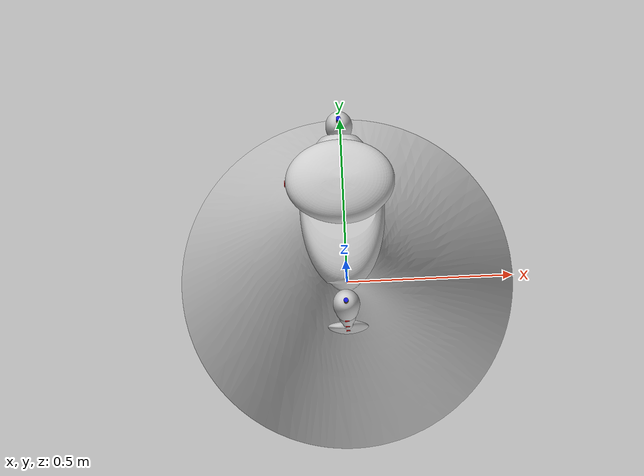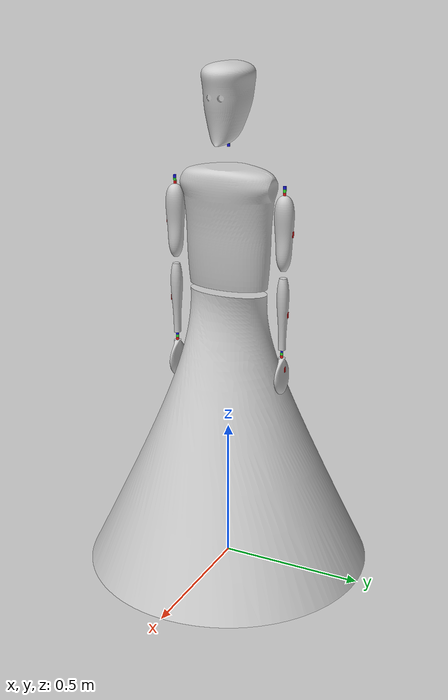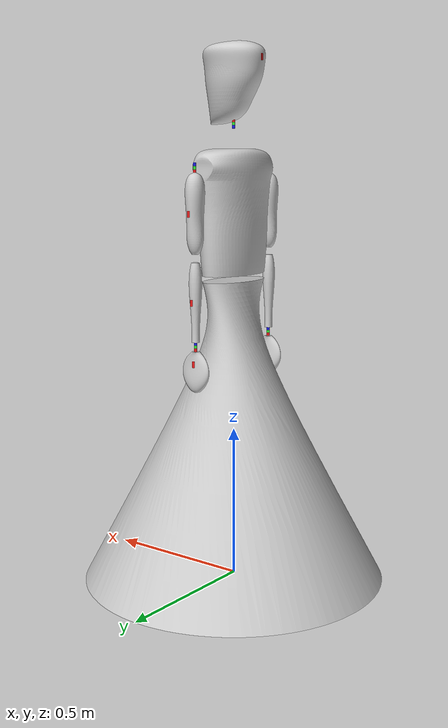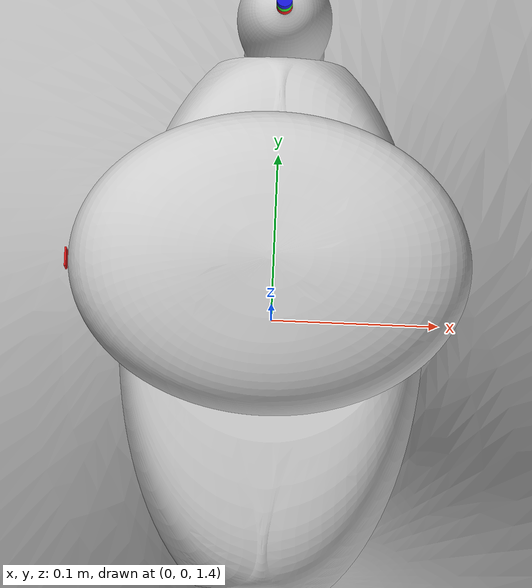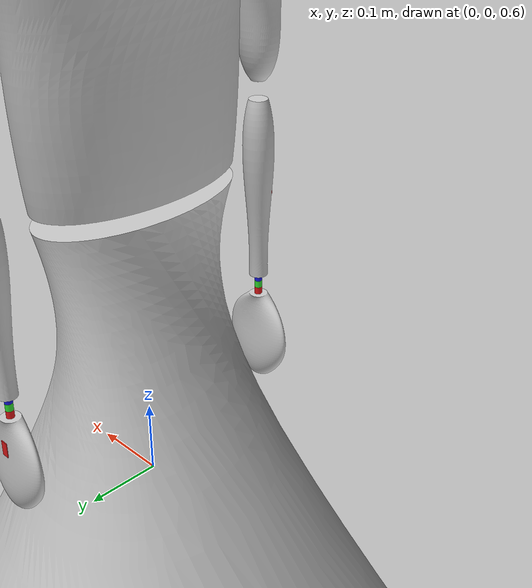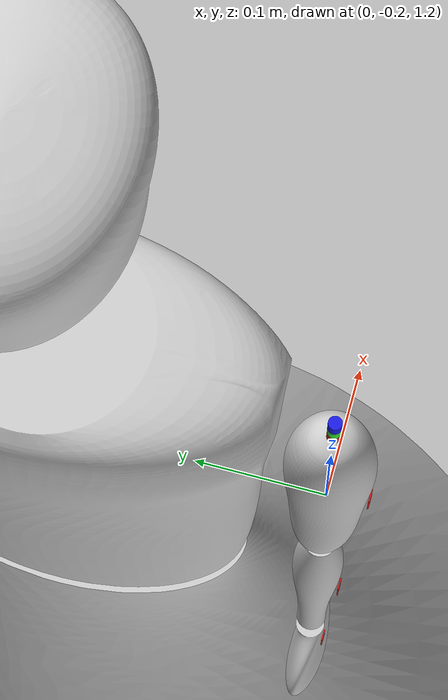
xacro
<?xml version="1.0" ?>

<robot name="human_model" xmlns:xacro="http://www.ros.org/wiki/xacro">

  <link name="world"/>

  <!-- box to world -->
  <joint name="world_joint" type="fixed">
    <origin xyz="0 0 0" rpy="0 0 0"/>
    <parent link="world"/>
    <child link="leg_ws"/>
  </joint>

  <!-- box link -->
  <link name="leg_ws">
    <collision>
      <origin xyz="0 0 0" rpy="0 0 0"/>
      <geometry>
        <mesh filename="package://human_model/meshes/leg_ws.STL" scale="0.001 0.001 0.001"/>
      </geometry>
    </collision>

    <visual>
      <origin xyz="0 0 0" rpy="0 0 0"/>
      <geometry>
        <mesh filename="package://human_model/meshes/leg_ws.STL" scale="0.001 0.001 0.001"/>
      </geometry>
      <material name="grey"/>
    </visual>

    <inertial>
      <mass value="268.51"/>
      <origin xyz="0 0 0.27" rpy="0 0 0"/>
      <inertia
      ixx="41.15"   ixy="-0.35"   ixz="0"
      iyx="-0.35"   iyy="41.08"   iyz="0"
      izx="0"   izy="0"   izz="19.68" />
    </inertial>
  </link>

  <!-- model to box -->
  <joint name="leg_joint" type="fixed">
    <origin xyz="0 0 1.02" rpy="0 0 0"/>
    <parent link="leg_ws"/>
    <child link="body"/>
  </joint>

  <!-- model link -->
  <link name="body">
    <collision>
      <origin xyz="0 0 0" rpy="0 0 0"/>
      <geometry>
        <mesh filename="package://human_model/meshes/Body.STL" scale="0.001 0.001 0.001"/>
      </geometry>
    </collision>

    <visual>
      <origin xyz="0 0 0" rpy="0 0 0"/>
      <geometry>
        <mesh filename="package://human_model/meshes/Body.STL" scale="0.001 0.001 0.001"/>
      </geometry>
      <material name="grey"/>
    </visual>

    <inertial>
      <mass value="15.83"/>
      <origin xyz="0 0 0.21" rpy="0 0 0"/>
      <inertia
      ixx="1.01"   ixy="0"   ixz="0"
      iyx="0"   iyy="0.94"   iyz="0"
      izx="0"   izy="0"   izz="0.12" />
    </inertial>
  </link>

  <!-- =============================   HEAD   ========================================== -->
  <!-- head_z to body -->
  <joint name="neck_z" type="revolute">
    <origin xyz="0 0 0.47" rpy="0 0 0"/>
    <parent link="body"/>
    <child link="head_z"/>

    <axis xyz="0 0 1"/>
    <limit effort="30" velocity="1.0" lower="-1.57" upper="1.57" />
  </joint>

  <!-- head_z link -->
  <link name="head_z">
    <collision>
      <origin xyz="0 0 0" rpy="0 0 0"/>
      <geometry>
        <cylinder radius="0.005" length="0.01"/>
      </geometry>
    </collision>

    <visual>
      <origin xyz="0 0 0" rpy="0 0 0"/>
      <geometry>
        <cylinder radius="0.005" length="0.01"/>
      </geometry>
      <material name="blue"/>
    </visual>

    <inertial>
      <mass value="2" />
      <origin xyz="0 0 0" rpy="0 0 0"/>
      <inertia ixx="1e-6" ixy="0" ixz="0" iyy="1e-6" iyz="0" izz="1e-6" />
    </inertial>
  </link>

  <!-- head_y to head_z -->
  <joint name="neck_y" type="revolute">
    <origin xyz="0 0 0.01" rpy="0 0 0"/>
    <parent link="head_z"/>
    <child link="head_y"/>

    <axis xyz="0 1 0"/>
    <limit effort="30" velocity="1.0" lower="-1.2" upper="1.0" />
  </joint>

  <!-- head_y link -->
  <link name="head_y">
    <collision>
      <origin xyz="0 0 0" rpy="0 0 0"/>
      <geometry>
        <cylinder radius="0.005" length="0.01"/>
      </geometry>
    </collision>

    <visual>
      <origin xyz="0 0 0" rpy="0 0 0"/>
      <geometry>
        <cylinder radius="0.005" length="0.01"/>
      </geometry>
      <material name="green"/>
    </visual>

    <inertial>
      <mass value="2" />
      <origin xyz="0 0 0" rpy="0 0 0"/>
      <inertia ixx="1e-6" ixy="0" ixz="0" iyy="1e-6" iyz="0" izz="1e-6" />
    </inertial>
  </link>

  <!-- head_x to head_y -->
  <joint name="neck_x" type="revolute">
    <origin xyz="0 0 0.01" rpy="0 0 0"/>
    <parent link="head_y"/>
    <child link="head_x"/>

    <axis xyz="1 0 0"/>
    <limit effort="30" velocity="1.0" lower="-0.79" upper="0.79" />
  </joint>

  <!-- head_x link -->
  <link name="head_x">
    <collision>
      <origin xyz="0 0 0" rpy="0 0 0"/>
      <geometry>
        <cylinder radius="0.005" length="0.01"/>
      </geometry>
    </collision>

    <visual>
      <origin xyz="0 0 0" rpy="0 0 0"/>
      <geometry>
        <cylinder radius="0.005" length="0.01"/>
      </geometry>
      <material name="red"/>
    </visual>

    <inertial>
      <mass value="2" />
      <origin xyz="0 0 0" rpy="0 0 0"/>
      <inertia ixx="1e-6" ixy="0" ixz="0" iyy="1e-6" iyz="0" izz="1e-6" />
    </inertial>
  </link>

  <!-- head to head_x -->
  <joint name="neck" type="fixed">
    <origin xyz="0 0 0.01" rpy="0 0 0"/>
    <parent link="head_x"/>
    <child link="head"/>
  </joint>

  <!-- head link -->
  <link name="head">
    <collision>
      <origin xyz="0 0 0" rpy="0 0 0"/>
      <geometry>
        <mesh filename="package://human_model/meshes/Head.STL" scale="0.001 0.001 0.001"/>
      </geometry>
    </collision>

    <visual>
      <origin xyz="0 0 0" rpy="0 0 0"/>
      <geometry>
        <mesh filename="package://human_model/meshes/Head.STL" scale="0.001 0.001 0.001"/>
      </geometry>
      <material name="grey"/>
    </visual>

    <inertial>
      <mass value="4.62"/>
      <origin xyz="0 0 0.13" rpy="0 0 0"/>
      <inertia
      ixx="0.1"   ixy="0"   ixz="0"
      iyx="0"   iyy="0.11"   iyz="0"
      izx="0"   izy="0"   izz="0.02" />
    </inertial>
  </link>

  <!-- Head IMU -->
  <joint name="imu_head" type="fixed">
    <origin xyz="-0.11 0 0.18" rpy="0 0 0"/>
    <parent link="head"/>
    <child link="head_imu"/>
  </joint>

  <!-- Head IMU -->
  <link name="head_imu">
    <collision>
      <origin xyz="0 0 0" rpy="0 0 0"/>
      <geometry>
          <box size="0.001 0.01 0.02"/>
      </geometry>
    </collision>

    <visual>
      <origin xyz="0 0 0" rpy="0 0 0"/>
      <geometry>
        <box size="0.001 0.01 0.02"/>
      </geometry>
      <material name="red"/>
    </visual>

    <inertial>
      <mass value="0.01"/>
      <origin xyz="0 0 0" rpy="0 0 0"/>
      <inertia
      ixx="0"   ixy="0"   ixz="0"
      iyx="0"   iyy="0"   iyz="0"
      izx="0"   izy="0"   izz="0" />
    </inertial>
  </link>

  <!-- =============================LEFT ARM========================================== -->
  <!-- ============================= UPPER ========================================== -->
  <!-- left_upper_z to body -->
  <joint name="left_shoulder_z" type="revolute">
    <origin xyz="0 0.2 0.35" rpy="0 0 0"/>
    <parent link="body"/>
    <child link="left_upper_z"/>

    <axis xyz="0 0 1"/>
    <limit effort="30" velocity="1.0" lower="-1.57" upper="1.57" />
  </joint>

  <!-- left_upper_z link -->
  <link name="left_upper_z">
    <collision>
      <origin xyz="0 0 0" rpy="0 0 0"/>
      <geometry>
        <cylinder radius="0.005" length="0.01"/>
      </geometry>
    </collision>

    <visual>
      <origin xyz="0 0 0" rpy="0 0 0"/>
      <geometry>
        <cylinder radius="0.005" length="0.01"/>
      </geometry>
      <material name="blue"/>
    </visual>

    <inertial>
      <mass value="0.5" />
      <origin xyz="0 0 0" rpy="0 0 0"/>
      <inertia ixx="1e-6" ixy="0" ixz="0" iyy="1e-6" iyz="0" izz="1e-6" />
    </inertial>
  </link>

  <!-- left_upper_y to left_upper_z -->
  <joint name="left_shoulder_y" type="revolute">
    <origin xyz="0 0 -0.01" rpy="0 0 0"/>
    <parent link="left_upper_z"/>
    <child link="left_upper_y"/>

    <axis xyz="0 1 0"/>
    <limit effort="30" velocity="1.0" lower="-3.14" upper="1.0" />
  </joint>

  <!-- left_upper_y link -->
  <link name="left_upper_y">
    <collision>
      <origin xyz="0 0 0" rpy="0 0 0"/>
      <geometry>
        <cylinder radius="0.005" length="0.01"/>
      </geometry>
    </collision>

    <visual>
      <origin xyz="0 0 0" rpy="0 0 0"/>
      <geometry>
        <cylinder radius="0.005" length="0.01"/>
      </geometry>
      <material name="green"/>
    </visual>

    <inertial>
      <mass value="0.5" />
      <origin xyz="0 0 0" rpy="0 0 0"/>
      <inertia ixx="1e-6" ixy="0" ixz="0" iyy="1e-6" iyz="0" izz="1e-6" />
    </inertial>
  </link>

  <!-- left_upper_x to left_upper_y -->
  <joint name="left_shoulder_x" type="revolute">
    <origin xyz="0 0 -0.01" rpy="0 0 0"/>
    <parent link="left_upper_y"/>
    <child link="left_upper_x"/>

    <axis xyz="1 0 0"/>
    <limit effort="30" velocity="1.0" lower="-0.9" upper="2.7" />
  </joint>

  <!-- left_upper_x link -->
  <link name="left_upper_x">
    <collision>
      <origin xyz="0 0 0" rpy="0 0 0"/>
      <geometry>
        <cylinder radius="0.005" length="0.01"/>
      </geometry>
    </collision>

    <visual>
      <origin xyz="0 0 0" rpy="0 0 0"/>
      <geometry>
        <cylinder radius="0.005" length="0.01"/>
      </geometry>
      <material name="red"/>
    </visual>

    <inertial>
      <mass value="0.5" />
      <origin xyz="0 0 0" rpy="0 0 0"/>
      <inertia ixx="1e-6" ixy="0" ixz="0" iyy="1e-6" iyz="0" izz="1e-6" />
    </inertial>
  </link>

  <!-- upper to left_upper_x -->
  <joint name="left_shoulder" type="fixed">
    <origin xyz="0 0 -0.005" rpy="0 0 0"/>
    <parent link="left_upper_x"/>
    <child link="left_upper"/>
  </joint>

  <!-- upper link -->
  <link name="left_upper">
    <collision>
      <origin xyz="0 0 0" rpy="0 0 0"/>
      <geometry>
        <mesh filename="package://human_model/meshes/Upper.STL" scale="0.001 0.001 0.001"/>
      </geometry>
    </collision>

    <visual>
      <origin xyz="0 0 0" rpy="0 0 0"/>
      <geometry>
        <mesh filename="package://human_model/meshes/Upper.STL" scale="0.001 0.001 0.001"/>
      </geometry>
      <material name="grey"/>
    </visual>

    <inertial>
      <mass value="0.55"/>
      <origin xyz="0 0 -0.12" rpy="0 0 0"/>
      <inertia
      ixx="0.01"   ixy="0"   ixz="0"
      iyx="0"   iyy="0.01"   iyz="0"
      izx="0"   izy="0"   izz="0" />
    </inertial>
  </link>

  <!-- left_upper IMU -->
  <joint name="imu_left_upper" type="fixed">
    <origin xyz="0 0.032 -0.125" rpy="0 0 0"/>
    <parent link="left_upper"/>
    <child link="left_upper_imu"/>
  </joint>

  <!-- left_upper IMU -->
  <link name="left_upper_imu">
    <collision>
      <origin xyz="0 0 0" rpy="0 0 0"/>
      <geometry>
          <box size="0.01 0.001 0.02"/>
      </geometry>
    </collision>

    <visual>
      <origin xyz="0 0 0" rpy="0 0 0"/>
      <geometry>
        <box size="0.01 0.001 0.02"/>
      </geometry>
      <material name="red"/>
    </visual>

    <inertial>
      <mass value="0.01"/>
      <origin xyz="0 0 0" rpy="0 0 0"/>
      <inertia
      ixx="0"   ixy="0"   ixz="0"
      iyx="0"   iyy="0"   iyz="0"
      izx="0"   izy="0"   izz="0" />
    </inertial>
  </link>

  <!-- ============================= LOWER ========================================== -->
  <!-- lower to upper -->
  <joint name="left_elbow" type="revolute">
    <origin xyz="0 0 -0.275" rpy="0 0 0"/>
    <parent link="left_upper"/>
    <child link="left_lower"/>

    <axis xyz="0 1 0"/>
    <limit effort="30" velocity="1.0" lower="-2.35619" upper="0.0" />
  </joint>

  <!-- lower link -->
  <link name="left_lower">
    <collision>
      <origin xyz="0 0 0" rpy="0 0 0"/>
      <geometry>
        <mesh filename="package://human_model/meshes/Lower.STL" scale="0.001 0.001 0.001"/>
      </geometry>
    </collision>

    <visual>
      <origin xyz="0 0 0" rpy="0 0 0"/>
      <geometry>
        <mesh filename="package://human_model/meshes/Lower.STL" scale="0.001 0.001 0.001"/>
      </geometry>
      <material name="grey"/>
    </visual>

    <inertial>
      <mass value="0.22"/>
      <origin xyz="0 0 -0.11" rpy="0 0 0"/>
      <inertia
      ixx="0"   ixy="0"   ixz="0"
      iyx="0"   iyy="0"   iyz="0"
      izx="0"   izy="0"   izz="0" />
    </inertial>
  </link>

  <!-- left_lower IMU -->
  <joint name="imu_left_lower" type="fixed">
    <origin xyz="0 0.02 -0.125" rpy="0 0 0"/>
    <parent link="left_lower"/>
    <child link="left_lower_imu"/>
  </joint>

  <!-- left_lower IMU -->
  <link name="left_lower_imu">
    <collision>
      <origin xyz="0 0 0" rpy="0 0 0"/>
      <geometry>
          <box size="0.01 0.001 0.02"/>
      </geometry>
    </collision>

    <visual>
      <origin xyz="0 0 0" rpy="0 0 0"/>
      <geometry>
        <box size="0.01 0.001 0.02"/>
      </geometry>
      <material name="red"/>
    </visual>

    <inertial>
      <mass value="0.01"/>
      <origin xyz="0 0 0" rpy="0 0 0"/>
      <inertia
      ixx="0"   ixy="0"   ixz="0"
      iyx="0"   iyy="0"   iyz="0"
      izx="0"   izy="0"   izz="0" />
    </inertial>
  </link>

  <!-- =============================  HAND  ========================================== -->
  <!-- left_hand_z to left_lower -->
  <joint name="left_wrist_z" type="revolute">
    <origin xyz="0 0 -0.255" rpy="0 0 0"/>
    <parent link="left_lower"/>
    <child link="left_hand_z"/>

    <axis xyz="0 0 1"/>
    <limit effort="30" velocity="1.0" lower="-1.0" upper="2.5" />
  </joint>

  <!-- left_hand_z link -->
  <link name="left_hand_z">
    <collision>
      <origin xyz="0 0 0" rpy="0 0 0"/>
      <geometry>
        <cylinder radius="0.005" length="0.01"/>
      </geometry>
    </collision>

    <visual>
      <origin xyz="0 0 0" rpy="0 0 0"/>
      <geometry>
        <cylinder radius="0.005" length="0.01"/>
      </geometry>
      <material name="blue"/>
    </visual>

    <inertial>
      <mass value="0.5" />
      <origin xyz="0 0 0" rpy="0 0 0"/>
      <inertia ixx="1e-6" ixy="0" ixz="0" iyy="1e-6" iyz="0" izz="1e-6" />
    </inertial>
  </link>

  <!-- left_hand_y to left_hand_z -->
  <joint name="left_wrist_y" type="revolute">
    <origin xyz="0 0 -0.01" rpy="0 0 0"/>
    <parent link="left_hand_z"/>
    <child link="left_hand_y"/>

    <axis xyz="0 1 0"/>
    <limit effort="30" velocity="1.0" lower="-0.3" upper="0.6" />
  </joint>

  <!-- left_hand_y link -->
  <link name="left_hand_y">
    <collision>
      <origin xyz="0 0 0" rpy="0 0 0"/>
      <geometry>
        <cylinder radius="0.005" length="0.01"/>
      </geometry>
    </collision>

    <visual>
      <origin xyz="0 0 0" rpy="0 0 0"/>
      <geometry>
        <cylinder radius="0.005" length="0.01"/>
      </geometry>
      <material name="green"/>
    </visual>

    <inertial>
      <mass value="0.5" />
      <origin xyz="0 0 0" rpy="0 0 0"/>
      <inertia ixx="1e-6" ixy="0" ixz="0" iyy="1e-6" iyz="0" izz="1e-6" />
    </inertial>
  </link>

  <!-- left_hand_x to left_hand_y -->
  <joint name="left_wrist_x" type="revolute">
    <origin xyz="0 0 -0.01" rpy="0 0 0"/>
    <parent link="left_hand_y"/>
    <child link="left_hand_x"/>

    <axis xyz="1 0 0"/>
    <limit effort="30" velocity="1.0" lower="-1.3" upper="1.2" />
  </joint>

  <!-- left_hand_x link -->
  <link name="left_hand_x">
    <collision>
      <origin xyz="0 0 0" rpy="0 0 0"/>
      <geometry>
        <cylinder radius="0.005" length="0.01"/>
      </geometry>
    </collision>

    <visual>
      <origin xyz="0 0 0" rpy="0 0 0"/>
      <geometry>
        <cylinder radius="0.005" length="0.01"/>
      </geometry>
      <material name="red"/>
    </visual>

    <inertial>
      <mass value="0.5" />
      <origin xyz="0 0 0" rpy="0 0 0"/>
      <inertia ixx="1e-6" ixy="0" ixz="0" iyy="1e-6" iyz="0" izz="1e-6" />
    </inertial>
  </link>

  <!-- hand to left_hand_x -->
  <joint name="left_wrist" type="fixed">
    <origin xyz="0 0 -0.005" rpy="0 0 0"/>
    <parent link="left_hand_x"/>
    <child link="left_hand"/>
  </joint>

  <!-- hand link -->
  <link name="left_hand">
    <collision>
      <origin xyz="0 0 0" rpy="0 0 0"/>
      <geometry>
        <mesh filename="package://human_model/meshes/Hand.STL" scale="0.001 0.001 0.001"/>
      </geometry>
    </collision>

    <visual>
      <origin xyz="0 0 0" rpy="0 0 0"/>
      <geometry>
        <mesh filename="package://human_model/meshes/Hand.STL" scale="0.001 0.001 0.001"/>
      </geometry>
      <material name="grey"/>
    </visual>

    <inertial>
      <mass value="0.21"/>
      <origin xyz="0 0 -0.07" rpy="0 0 0"/>
      <inertia
      ixx="0"   ixy="0"   ixz="0"
      iyx="0"   iyy="0"   iyz="0"
      izx="0"   izy="0"   izz="0" />
    </inertial>
  </link>

  <!-- left_hand IMU -->
  <joint name="imu_left_hand" type="fixed">
    <origin xyz="0 0.013 -0.04" rpy="0 0 0"/>
    <parent link="left_hand"/>
    <child link="left_hand_imu"/>
  </joint>

  <!-- left_hand IMU -->
  <link name="left_hand_imu">
    <collision>
      <origin xyz="0 0 0" rpy="0 0 0"/>
      <geometry>
          <box size="0.01 0.001 0.02"/>
      </geometry>
    </collision>

    <visual>
      <origin xyz="0 0 0" rpy="0 0 0"/>
      <geometry>
        <box size="0.01 0.001 0.02"/>
      </geometry>
      <material name="red"/>
    </visual>

    <inertial>
      <mass value="0.01"/>
      <origin xyz="0 0 0" rpy="0 0 0"/>
      <inertia
      ixx="0"   ixy="0"   ixz="0"
      iyx="0"   iyy="0"   iyz="0"
      izx="0"   izy="0"   izz="0" />
    </inertial>
  </link>

  <!-- =============================RIGHT ARM========================================== -->
  <!-- ============================= UPPER ========================================== -->
  <!-- right_upper_z to body -->
  <joint name="right_shoulder_z" type="revolute">
    <origin xyz="0 -0.2 0.35" rpy="0 0 0"/>
    <parent link="body"/>
    <child link="right_upper_z"/>

    <axis xyz="0 0 1"/>
    <limit effort="30" velocity="1.0" lower="-1.57" upper="1.57" />
  </joint>

  <!-- right_upper_z link -->
  <link name="right_upper_z">
    <collision>
      <origin xyz="0 0 0" rpy="0 0 0"/>
      <geometry>
        <cylinder radius="0.005" length="0.01"/>
      </geometry>
    </collision>

    <visual>
      <origin xyz="0 0 0" rpy="0 0 0"/>
      <geometry>
        <cylinder radius="0.005" length="0.01"/>
      </geometry>
      <material name="blue"/>
    </visual>

    <inertial>
      <mass value="0.5" />
      <origin xyz="0 0 0" rpy="0 0 0"/>
      <inertia ixx="1e-6" ixy="0" ixz="0" iyy="1e-6" iyz="0" izz="1e-6" />
    </inertial>
  </link>

  <!-- right_upper_y to right_upper_z -->
  <joint name="right_shoulder_y" type="revolute">
    <origin xyz="0 0 -0.01" rpy="0 0 0"/>
    <parent link="right_upper_z"/>
    <child link="right_upper_y"/>

    <axis xyz="0 1 0"/>
    <limit effort="30" velocity="1.0" lower="-3.14" upper="1.0" />
  </joint>

  <!-- right_upper_y link -->
  <link name="right_upper_y">
    <collision>
      <origin xyz="0 0 0" rpy="0 0 0"/>
      <geometry>
        <cylinder radius="0.005" length="0.01"/>
      </geometry>
    </collision>

    <visual>
      <origin xyz="0 0 0" rpy="0 0 0"/>
      <geometry>
        <cylinder radius="0.005" length="0.01"/>
      </geometry>
      <material name="green"/>
    </visual>

    <inertial>
      <mass value="0.5" />
      <origin xyz="0 0 0" rpy="0 0 0"/>
      <inertia ixx="1e-6" ixy="0" ixz="0" iyy="1e-6" iyz="0" izz="1e-6" />
    </inertial>
  </link>

  <!-- right_upper_x to right_upper_y -->
  <joint name="right_shoulder_x" type="revolute">
    <origin xyz="0 0 -0.01" rpy="0 0 0"/>
    <parent link="right_upper_y"/>
    <child link="right_upper_x"/>

    <axis xyz="1 0 0"/>
    <limit effort="30" velocity="1.0" lower="-2.7" upper="0.9" />
  </joint>

  <!-- right_upper_x link -->
  <link name="right_upper_x">
    <collision>
      <origin xyz="0 0 0" rpy="0 0 0"/>
      <geometry>
        <cylinder radius="0.005" length="0.01"/>
      </geometry>
    </collision>

    <visual>
      <origin xyz="0 0 0" rpy="0 0 0"/>
      <geometry>
        <cylinder radius="0.005" length="0.01"/>
      </geometry>
      <material name="red"/>
    </visual>

    <inertial>
      <mass value="0.5" />
      <origin xyz="0 0 0" rpy="0 0 0"/>
      <inertia ixx="1e-6" ixy="0" ixz="0" iyy="1e-6" iyz="0" izz="1e-6" />
    </inertial>
  </link>

  <!-- upper to right_upper_x -->
  <joint name="right_shoulder" type="fixed">
    <origin xyz="0 0 -0.005" rpy="0 0 0"/>
    <parent link="right_upper_x"/>
    <child link="right_upper"/>
  </joint>

  <!-- upper link -->
  <link name="right_upper">
    <collision>
      <origin xyz="0 0 0" rpy="0 0 0"/>
      <geometry>
        <mesh filename="package://human_model/meshes/Upper.STL" scale="0.001 0.001 0.001"/>
      </geometry>
    </collision>

    <visual>
      <origin xyz="0 0 0" rpy="0 0 0"/>
      <geometry>
        <mesh filename="package://human_model/meshes/Upper.STL" scale="0.001 0.001 0.001"/>
      </geometry>
      <material name="grey"/>
    </visual>

    <inertial>
      <mass value="0.55"/>
      <origin xyz="0 0 -0.12" rpy="0 0 0"/>
      <inertia
      ixx="0.01"   ixy="0"   ixz="0"
      iyx="0"   iyy="0.01"   iyz="0"
      izx="0"   izy="0"   izz="0" />
    </inertial>
  </link>

  <!-- right_upper IMU -->
  <joint name="imu_right_upper" type="fixed">
    <origin xyz="0 -0.032 -0.125" rpy="0 0 0"/>
    <parent link="right_upper"/>
    <child link="right_upper_imu"/>
  </joint>

  <!-- right_upper IMU -->
  <link name="right_upper_imu">
    <collision>
      <origin xyz="0 0 0" rpy="0 0 0"/>
      <geometry>
          <box size="0.01 0.001 0.02"/>
      </geometry>
    </collision>

    <visual>
      <origin xyz="0 0 0" rpy="0 0 0"/>
      <geometry>
        <box size="0.01 0.001 0.02"/>
      </geometry>
      <material name="red"/>
    </visual>

    <inertial>
      <mass value="0.01"/>
      <origin xyz="0 0 0" rpy="0 0 0"/>
      <inertia
      ixx="0"   ixy="0"   ixz="0"
      iyx="0"   iyy="0"   iyz="0"
      izx="0"   izy="0"   izz="0" />
    </inertial>
  </link>

  <!-- ============================= LOWER ========================================== -->
  <!-- lower to upper -->
  <joint name="right_elbow" type="revolute">
    <origin xyz="0 0 -0.275" rpy="0 0 0"/>
    <parent link="right_upper"/>
    <child link="right_lower"/>

    <axis xyz="0 1 0"/>
    <limit effort="30" velocity="1.0" lower="-1" upper="1" />
  </joint>

  <!-- lower link -->
  <link name="right_lower">
    <collision>
      <origin xyz="0 0 0" rpy="0 0 0"/>
      <geometry>
        <mesh filename="package://human_model/meshes/Lower.STL" scale="0.001 0.001 0.001"/>
      </geometry>
    </collision>

    <visual>
      <origin xyz="0 0 0" rpy="0 0 0"/>
      <geometry>
        <mesh filename="package://human_model/meshes/Lower.STL" scale="0.001 0.001 0.001"/>
      </geometry>
      <material name="grey"/>
    </visual>

    <inertial>
      <mass value="0.22"/>
      <origin xyz="0 0 -0.11" rpy="0 0 0"/>
      <inertia
      ixx="0"   ixy="0"   ixz="0"
      iyx="0"   iyy="0"   iyz="0"
      izx="0"   izy="0"   izz="0" />
    </inertial>
  </link>

  <!-- right_lower IMU -->
  <joint name="imu_right_lower" type="fixed">
    <origin xyz="0 -0.02 -0.125" rpy="0 0 0"/>
    <parent link="right_lower"/>
    <child link="right_lower_imu"/>
  </joint>

  <!-- right_lower IMU -->
  <link name="right_lower_imu">
    <collision>
      <origin xyz="0 0 0" rpy="0 0 0"/>
      <geometry>
          <box size="0.01 0.001 0.02"/>
      </geometry>
    </collision>

    <visual>
      <origin xyz="0 0 0" rpy="0 0 0"/>
      <geometry>
        <box size="0.01 0.001 0.02"/>
      </geometry>
      <material name="red"/>
    </visual>

    <inertial>
      <mass value="0.01"/>
      <origin xyz="0 0 0" rpy="0 0 0"/>
      <inertia
      ixx="0"   ixy="0"   ixz="0"
      iyx="0"   iyy="0"   iyz="0"
      izx="0"   izy="0"   izz="0" />
    </inertial>
  </link>

  <!-- =============================  HAND  ========================================== -->
  <!-- right_hand_z to right_lower -->
  <joint name="right_wrist_z" type="revolute">
    <origin xyz="0 0 -0.255" rpy="0 0 0"/>
    <parent link="right_lower"/>
    <child link="right_hand_z"/>

    <axis xyz="0 0 1"/>
    <limit effort="30" velocity="1.0" lower="-1.0" upper="2.5" />
  </joint>

  <!-- right_hand_z link -->
  <link name="right_hand_z">
    <collision>
      <origin xyz="0 0 0" rpy="0 0 0"/>
      <geometry>
        <cylinder radius="0.005" length="0.01"/>
      </geometry>
    </collision>

    <visual>
      <origin xyz="0 0 0" rpy="0 0 0"/>
      <geometry>
        <cylinder radius="0.005" length="0.01"/>
      </geometry>
      <material name="blue"/>
    </visual>

    <inertial>
      <mass value="0.5" />
      <origin xyz="0 0 0" rpy="0 0 0"/>
      <inertia ixx="1e-6" ixy="0" ixz="0" iyy="1e-6" iyz="0" izz="1e-6" />
    </inertial>
  </link>

  <!-- right_hand_y to right_hand_z -->
  <joint name="right_wrist_y" type="revolute">
    <origin xyz="0 0 -0.01" rpy="0 0 0"/>
    <parent link="right_hand_z"/>
    <child link="right_hand_y"/>

    <axis xyz="0 1 0"/>
    <limit effort="30" velocity="1.0" lower="-0.3" upper="0.6" />
  </joint>

  <!-- right_hand_y link -->
  <link name="right_hand_y">
    <collision>
      <origin xyz="0 0 0" rpy="0 0 0"/>
      <geometry>
        <cylinder radius="0.005" length="0.01"/>
      </geometry>
    </collision>

    <visual>
      <origin xyz="0 0 0" rpy="0 0 0"/>
      <geometry>
        <cylinder radius="0.005" length="0.01"/>
      </geometry>
      <material name="green"/>
    </visual>

    <inertial>
      <mass value="0.5" />
      <origin xyz="0 0 0" rpy="0 0 0"/>
      <inertia ixx="1e-6" ixy="0" ixz="0" iyy="1e-6" iyz="0" izz="1e-6" />
    </inertial>
  </link>

  <!-- right_hand_x to right_hand_y -->
  <joint name="right_wrist_x" type="revolute">
    <origin xyz="0 0 -0.01" rpy="0 0 0"/>
    <parent link="right_hand_y"/>
    <child link="right_hand_x"/>

    <axis xyz="1 0 0"/>
    <limit effort="30" velocity="1.0" lower="-1.3" upper="1.2" />
  </joint>

  <!-- right_hand_x link -->
  <link name="right_hand_x">
    <collision>
      <origin xyz="0 0 0" rpy="0 0 0"/>
      <geometry>
        <cylinder radius="0.005" length="0.01"/>
      </geometry>
    </collision>

    <visual>
      <origin xyz="0 0 0" rpy="0 0 0"/>
      <geometry>
        <cylinder radius="0.005" length="0.01"/>
      </geometry>
      <material name="red"/>
    </visual>

    <inertial>
      <mass value="0.5" />
      <origin xyz="0 0 0" rpy="0 0 0"/>
      <inertia ixx="1e-6" ixy="0" ixz="0" iyy="1e-6" iyz="0" izz="1e-6" />
    </inertial>
  </link>

  <!-- hand to right_hand_x -->
  <joint name="right_wrist" type="fixed">
    <origin xyz="0 0 -0.005" rpy="0 0 0"/>
    <parent link="right_hand_x"/>
    <child link="right_hand"/>
  </joint>

  <!-- hand link -->
  <link name="right_hand">
    <collision>
      <origin xyz="0 0 0" rpy="0 0 0"/>
      <geometry>
        <mesh filename="package://human_model/meshes/Hand.STL" scale="0.001 0.001 0.001"/>
      </geometry>
    </collision>

    <visual>
      <origin xyz="0 0 0" rpy="0 0 0"/>
      <geometry>
        <mesh filename="package://human_model/meshes/Hand.STL" scale="0.001 0.001 0.001"/>
      </geometry>
      <material name="grey"/>
    </visual>

    <inertial>
      <mass value="0.21"/>
      <origin xyz="0 0 -0.07" rpy="0 0 0"/>
      <inertia
      ixx="0"   ixy="0"   ixz="0"
      iyx="0"   iyy="0"   iyz="0"
      izx="0"   izy="0"   izz="0" />
    </inertial>
  </link>

  <!-- right_hand IMU -->
  <joint name="imu_right_hand" type="fixed">
    <origin xyz="0 -0.013 -0.04" rpy="0 0 0"/>
    <parent link="right_hand"/>
    <child link="right_hand_imu"/>
  </joint>

  <!-- right_hand IMU -->
  <link name="right_hand_imu">
    <collision>
      <origin xyz="0 0 0" rpy="0 0 0"/>
      <geometry>
          <box size="0.01 0.001 0.02"/>
      </geometry>
    </collision>

    <visual>
      <origin xyz="0 0 0" rpy="0 0 0"/>
      <geometry>
        <box size="0.01 0.001 0.02"/>
      </geometry>
      <material name="red"/>
    </visual>

    <inertial>
      <mass value="0.01"/>
      <origin xyz="0 0 0" rpy="0 0 0"/>
      <inertia
      ixx="0"   ixy="0"   ixz="0"
      iyx="0"   iyy="0"   iyz="0"
      izx="0"   izy="0"   izz="0" />
    </inertial>
  </link>

  <!-- =============================  Gazebo  ========================================== -->
  <!-- Gazebo Plugins -->
  <gazebo reference="head_imu">
    <gravity>true</gravity>
    <sensor name="imu_sensor" type="imu">
      <always_on>true</always_on>
      <update_rate>100</update_rate>
      <visualize>true</visualize>
      <topic>__default_topic__</topic>
      <plugin filename="libgazebo_ros_imu_sensor.so" name="imu_plugin">
        <topicName>head_imu</topicName>
        <bodyName>head_imu</bodyName>
        <updateRateHZ>10.0</updateRateHZ>
        <gaussianNoise>0.0</gaussianNoise>
        <xyzOffset>0 0 0</xyzOffset>
        <rpyOffset>0 0 0</rpyOffset>
        <frameName>head_imu</frameName>
      </plugin>
      <pose>0 0 0 0 0 0</pose>
    </sensor>
  </gazebo>

  <gazebo reference="left_upper_imu">
    <gravity>true</gravity>
    <sensor name="imu_sensor" type="imu">
      <always_on>true</always_on>
      <update_rate>100</update_rate>
      <visualize>true</visualize>
      <topic>__default_topic__</topic>
      <plugin filename="libgazebo_ros_imu_sensor.so" name="imu_plugin">
        <topicName>left_upper_imu</topicName>
        <bodyName>left_upper_imu</bodyName>
        <updateRateHZ>10.0</updateRateHZ>
        <gaussianNoise>0.0</gaussianNoise>
        <xyzOffset>0 0 0</xyzOffset>
        <rpyOffset>0 0 0</rpyOffset>
        <frameName>left_upper_imu</frameName>
      </plugin>
      <pose>0 0 0 0 0 0</pose>
    </sensor>
  </gazebo>

  <gazebo reference="left_lower_imu">
    <gravity>true</gravity>
    <sensor name="imu_sensor" type="imu">
      <always_on>true</always_on>
      <update_rate>100</update_rate>
      <visualize>true</visualize>
      <topic>__default_topic__</topic>
      <plugin filename="libgazebo_ros_imu_sensor.so" name="imu_plugin">
        <topicName>left_lower_imu</topicName>
        <bodyName>left_lower_imu</bodyName>
        <updateRateHZ>10.0</updateRateHZ>
        <gaussianNoise>0.0</gaussianNoise>
        <xyzOffset>0 0 0</xyzOffset>
        <rpyOffset>0 0 0</rpyOffset>
        <frameName>left_lower_imu</frameName>
      </plugin>
      <pose>0 0 0 0 0 0</pose>
    </sensor>
  </gazebo>

  <gazebo reference="left_hand_imu">
    <gravity>true</gravity>
    <sensor name="imu_sensor" type="imu">
      <always_on>true</always_on>
      <update_rate>100</update_rate>
      <visualize>true</visualize>
      <topic>__default_topic__</topic>
      <plugin filename="libgazebo_ros_imu_sensor.so" name="imu_plugin">
        <topicName>left_hand_imu</topicName>
        <bodyName>left_hand_imu</bodyName>
        <updateRateHZ>10.0</updateRateHZ>
        <gaussianNoise>0.0</gaussianNoise>
        <xyzOffset>0 0 0</xyzOffset>
        <rpyOffset>0 0 0</rpyOffset>
        <frameName>left_hand_imu</frameName>
      </plugin>
      <pose>0 0 0 0 0 0</pose>
    </sensor>
  </gazebo>

  <gazebo reference="right_upper_imu">
    <gravity>true</gravity>
    <sensor name="imu_sensor" type="imu">
      <always_on>true</always_on>
      <update_rate>100</update_rate>
      <visualize>true</visualize>
      <topic>__default_topic__</topic>
      <plugin filename="libgazebo_ros_imu_sensor.so" name="imu_plugin">
        <topicName>right_upper_imu</topicName>
        <bodyName>right_upper_imu</bodyName>
        <updateRateHZ>10.0</updateRateHZ>
        <gaussianNoise>0.0</gaussianNoise>
        <xyzOffset>0 0 0</xyzOffset>
        <rpyOffset>0 0 0</rpyOffset>
        <frameName>right_upper_imu</frameName>
      </plugin>
      <pose>0 0 0 0 0 0</pose>
    </sensor>
  </gazebo>

  <gazebo reference="right_lower_imu">
    <gravity>true</gravity>
    <sensor name="imu_sensor" type="imu">
      <always_on>true</always_on>
      <update_rate>100</update_rate>
      <visualize>true</visualize>
      <topic>__default_topic__</topic>
      <plugin filename="libgazebo_ros_imu_sensor.so" name="imu_plugin">
        <topicName>right_lower_imu</topicName>
        <bodyName>right_lower_imu</bodyName>
        <updateRateHZ>10.0</updateRateHZ>
        <gaussianNoise>0.0</gaussianNoise>
        <xyzOffset>0 0 0</xyzOffset>
        <rpyOffset>0 0 0</rpyOffset>
        <frameName>right_lower_imu</frameName>
      </plugin>
      <pose>0 0 0 0 0 0</pose>
    </sensor>
  </gazebo>

  <gazebo reference="right_hand_imu">
    <gravity>true</gravity>
    <sensor name="imu_sensor" type="imu">
      <always_on>true</always_on>
      <update_rate>100</update_rate>
      <visualize>true</visualize>
      <topic>__default_topic__</topic>
      <plugin filename="libgazebo_ros_imu_sensor.so" name="imu_plugin">
        <topicName>right_hand_imu</topicName>
        <bodyName>right_hand_imu</bodyName>
        <updateRateHZ>10.0</updateRateHZ>
        <gaussianNoise>0.0</gaussianNoise>
        <xyzOffset>0 0 0</xyzOffset>
        <rpyOffset>0 0 0</rpyOffset>
        <frameName>right_hand_imu</frameName>
      </plugin>
      <pose>0 0 0 0 0 0</pose>
    </sensor>
  </gazebo>

  <!-- =============================  Colors  ========================================== -->
  <material name="blue">
    <color rgba="0.1 0.1 0.9 1"/>
  </material>

  <material name="grey">
    <color rgba="0.8 0.8 0.8 1"/>
  </material>

  <material name="red">
    <color rgba="0.9 0.1 0.1 1"/>
  </material>

  <material name="green">
    <color rgba="0.2 0.9 0.2 1"/>
  </material>

</robot>
